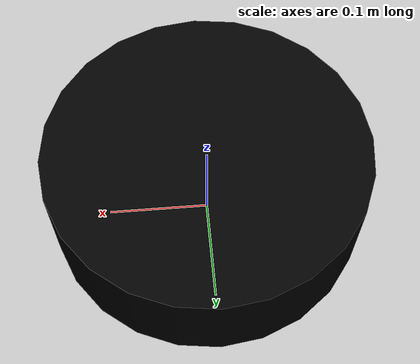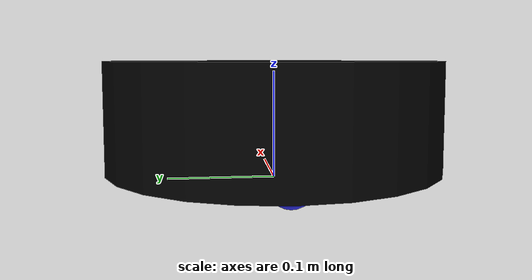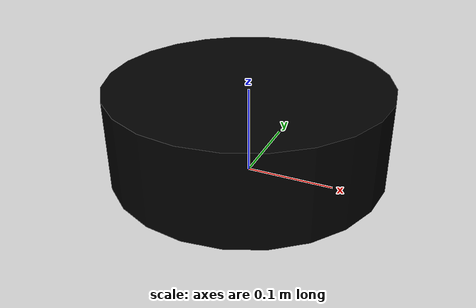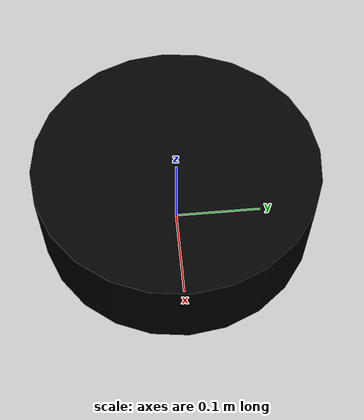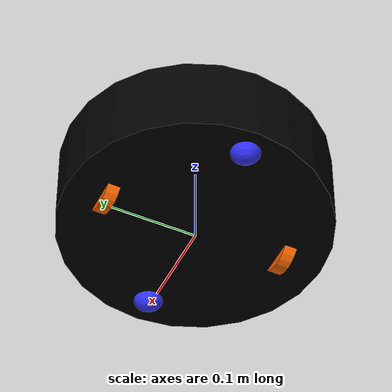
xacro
<?xml version="1.0"?>
<robot xmlns:xacro="http://www.ros.org/wiki/xacro" >

    <xacro:include filename="inertial_macros.xacro"/>

    <material name="white">
        <color rgba="1 1 1 1"/>
    </material>

    <material name="orange">
        <color rgba="1 0.4 0.0 1"/>
    </material>

    <material name="black">
        <color rgba="0.0 0.0 0.0 1"/>
    </material>

    <material name="blue">
        <color rgba="0.2 0.2 1 1"/>
    </material>

    <material name="red">
        <color rgba="1 0 0 1"/>
    </material>

    <!-- Base footprint -->

    <link name="base_footprint" />

    <joint name="base_joint" type="fixed">

        <parent link="base_footprint"/>
        <child link="base_link"/>
        <origin xyz="0.0 0.0 0.03"/>

    </joint>

    <!-- Base link is your chassis-->

    <link name="base_link">

        <visual>
            <origin xyz="0.0 0.0 0.03"/>
            <geometry>
                <cylinder radius="0.156" length="0.1"/>
            </geometry>
            <material name="black" />
        </visual>
        <collision>
        <origin xyz="0.0 0.0 0.03"/>
            <geometry>
                <cylinder radius="0.158" length="0.1"/>
            </geometry>
        </collision>
        <xacro:inertial_cylinder mass="0.8" radius="0.156" length="0.1">
            <origin xyz="0.0 0.0 0.03" rpy="0.0 0.0 0.0"/>
        </xacro:inertial_cylinder>

    </link>

    <gazebo reference="base_link">
        <material>Gazebo/Black</material>
    </gazebo>

    <!-- Left whell link-->

    <joint name="left_wheel_joint" type="continuous">
        <parent link="base_link"/>
        <child link="left_wheel"/>
        <origin xyz="0.0 0.108 0.00" rpy="-${pi/2} 0.0 0.0" />
        <axis xyz="0.0 0.0 1"/>
    </joint>

    <link name="left_wheel">
        <visual>
            <geometry>
                <cylinder radius="0.03" length="0.0145"/>
            </geometry>
            <material name="orange" />
        </visual>
        <collision>
            <geometry>
                <cylinder radius="0.03" length="0.0145"/>
            </geometry>
        </collision>
        <xacro:inertial_cylinder mass="0.15" radius="0.03" length="0.0145">
            <origin xyz="0.0 0.0 0.0" rpy="0.0 0.0 0.0"/>
        </xacro:inertial_cylinder>
    </link>

    <gazebo reference="left_wheel">
        <material>Gazebo/Orange</material>
    </gazebo>

    <!-- Right whell link-->

    <joint name="right_wheel_joint" type="continuous">
        <parent link="base_link"/>
        <child link="right_wheel"/>
        <origin xyz="0.0 -0.108 0.00" rpy="${pi/2} 0.0 0.0" />
        <axis xyz="0.0 0.0 -1"/>
    </joint>

    <link name="right_wheel">
        <visual>
            <geometry>
                <cylinder radius="0.03" length="0.0145"/>
            </geometry>
            <material name="orange" />
        </visual>
        <collision>
            <geometry>
                <cylinder radius="0.03" length="0.0145"/>
            </geometry>
        </collision>
        <xacro:inertial_cylinder mass="0.15" radius="0.03" length="0.0145">
            <origin xyz="0.0 0.0 0.0" rpy="0.0 0.0 0.0"/>
        </xacro:inertial_cylinder>
    </link>

    <gazebo reference="right_wheel">
        <material>Gazebo/Orange</material>
    </gazebo>

    <!-- Caster Wheels-->

    <joint name="caster_front_joint" type="fixed">
        <parent link="base_link"/>
        <child link="caster_front_wheel"/>
        <origin xyz="0.125 0.0 -0.01"/>
    </joint>

    <link name="caster_front_wheel">
        <visual>
            <geometry>
                <sphere radius="0.02"/>
            </geometry>
            <material name="blue" />
        </visual>
        <collision>
            <geometry>
                <sphere radius="0.02"/>
            </geometry>
        </collision>
        <xacro:inertial_sphere mass="0.1" radius="0.03" >
            <origin xyz="0.0 0.0 0.0" rpy="0.0 0.0 0.0"/>
        </xacro:inertial_sphere>
    </link>

    <gazebo reference="caster_front_wheel">
        <material>Gazebo/Blue</material>
        <mu1 value="0.001"/>
        <mu2 value="0.001"/>
    </gazebo>

    <joint name="caster_back_joint" type="fixed">
        <parent link="base_link"/>
        <child link="caster_back_wheel"/>
        <origin xyz="-0.125 0.0 -0.01"/>
    </joint>

    <link name="caster_back_wheel">
        <visual>
            <geometry>
                <sphere radius="0.02"/>
            </geometry>
            <material name="blue" />
        </visual>
        <collision>
            <geometry>
                <sphere radius="0.02"/>
            </geometry>
        </collision>
        <xacro:inertial_sphere mass="0.1" radius="0.03" >
            <origin xyz="0.0 0.0 0.0" rpy="0.0 0.0 0.0"/>
        </xacro:inertial_sphere>
    </link>

    <gazebo reference="caster_back_wheel">
        <material>Gazebo/Blue</material>
        <mu1 value="0.001"/>
        <mu2 value="0.001"/>
    </gazebo>

</robot>
